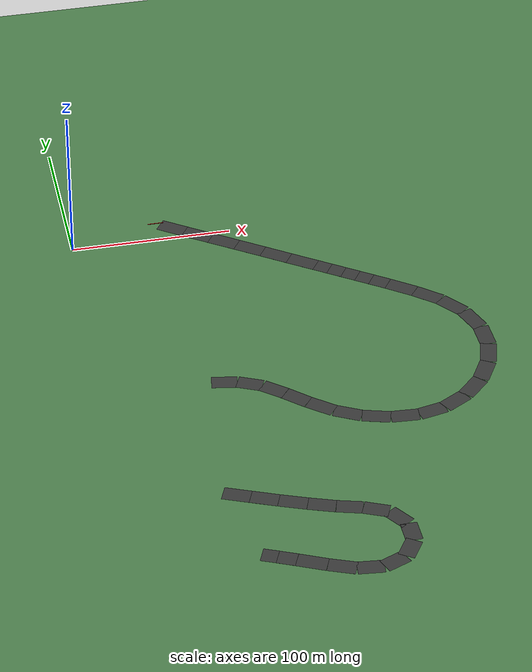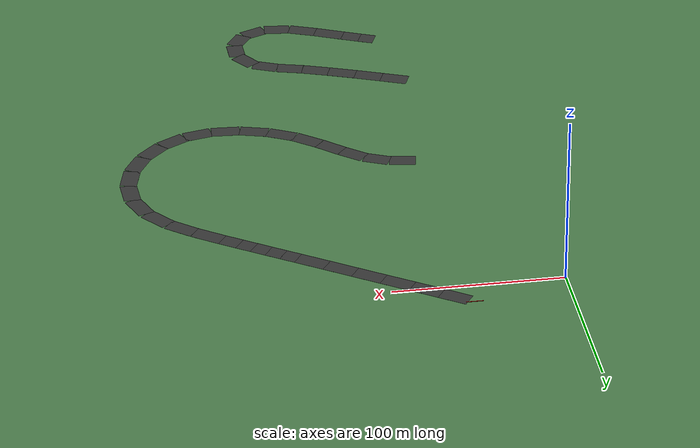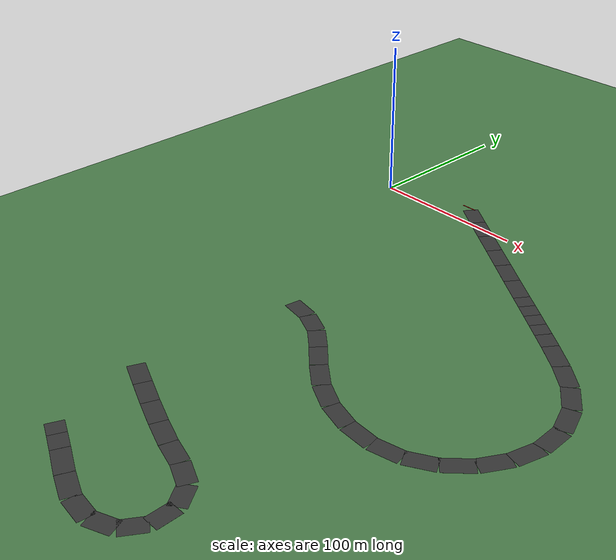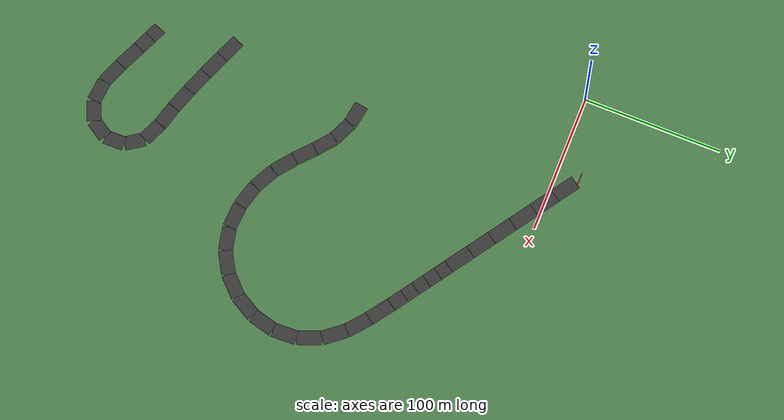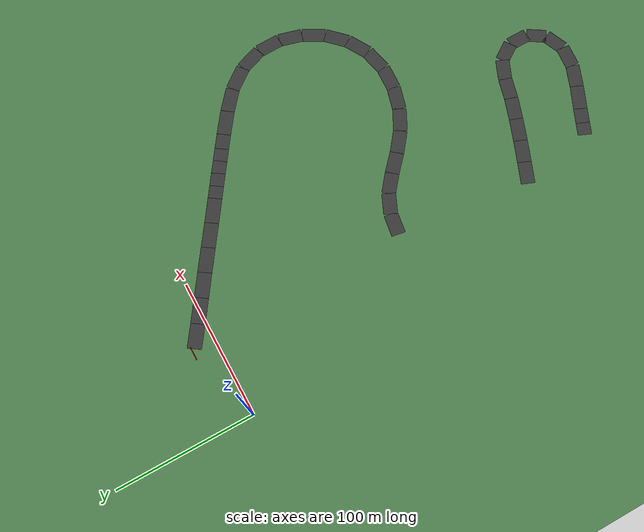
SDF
<sdf version="1.6">
 <world name="new_silesia_ring">
  <model name="ground_plane">
   <static>true</static>
   <link name="link">
    <collision name="collision">
     <geometry><plane><normal>0 0 1</normal><size>500 500</size></plane></geometry>
     <surface><friction><ode><mu>1</mu><mu2>1</mu2></ode></friction></surface>
    </collision>
    <visual name="visual">
     <geometry><plane><normal>0 0 1</normal><size>500 500</size></plane></geometry>
     <material>
      <ambient>0.3 0.5 0.3 1</ambient>
      <diffuse>0.3 0.5 0.3 1</diffuse>
      <specular>0.1 0.1 0.1 1</specular>
     </material>
    </visual>
   </link>
  </model>
  <model name="road_segment_86">
   <static>true</static>
   <pose>65.25505 9.93185 0.003 0 0 2.5406223590411257</pose>
   <link name="link">
    <visual name="visual">
     <geometry><box><size>17.24117116961606 10.0 0.006</size></box></geometry>
     <material><ambient>0.22 0.22 0.22 1</ambient><diffuse>0.22 0.22 0.22 1</diffuse></material>
    </visual>
    <collision name="collision">
     <geometry><box><size>17.24117116961606 10.0 0.006</size></box></geometry>
     <surface><friction><ode><mu>0.9</mu><mu2>0.9</mu2></ode></friction></surface>
    </collision>
   </link>
  </model>
  <model name="road_segment_85">
   <static>true</static>
   <pose>79.81675 0.0052000000000003155 0.003 0 0 2.545780368420958</pose>
   <link name="link">
    <visual name="visual">
     <geometry><box><size>18.005590492122156 10.0 0.006</size></box></geometry>
     <material><ambient>0.22 0.22 0.22 1</ambient><diffuse>0.22 0.22 0.22 1</diffuse></material>
    </visual>
    <collision name="collision">
     <geometry><box><size>18.005590492122156 10.0 0.006</size></box></geometry>
     <surface><friction><ode><mu>0.9</mu><mu2>0.9</mu2></ode></friction></surface>
    </collision>
   </link>
  </model>
  <model name="road_segment_84">
   <static>true</static>
   <pose>94.6917 -10.0511 0.003 0 0 2.548462827201153</pose>
   <link name="link">
    <visual name="visual">
     <geometry><box><size>17.905070161269965 10.0 0.006</size></box></geometry>
     <material><ambient>0.22 0.22 0.22 1</ambient><diffuse>0.22 0.22 0.22 1</diffuse></material>
    </visual>
    <collision name="collision">
     <geometry><box><size>17.905070161269965 10.0 0.006</size></box></geometry>
     <surface><friction><ode><mu>0.9</mu><mu2>0.9</mu2></ode></friction></surface>
    </collision>
   </link>
  </model>
  <model name="road_segment_83">
   <static>true</static>
   <pose>109.4822 -20.0638 0.003 0 0 2.544511419701974</pose>
   <link name="link">
    <visual name="visual">
     <geometry><box><size>17.81687249435209 10.0 0.006</size></box></geometry>
     <material><ambient>0.22 0.22 0.22 1</ambient><diffuse>0.22 0.22 0.22 1</diffuse></material>
    </visual>
    <collision name="collision">
     <geometry><box><size>17.81687249435209 10.0 0.006</size></box></geometry>
     <surface><friction><ode><mu>0.9</mu><mu2>0.9</mu2></ode></friction></surface>
    </collision>
   </link>
  </model>
  <model name="road_segment_82">
   <static>true</static>
   <pose>124.2111 -30.109299999999998 0.003 0 0 2.5415536403649046</pose>
   <link name="link">
    <visual name="visual">
     <geometry><box><size>17.84000682174758 10.0 0.006</size></box></geometry>
     <material><ambient>0.22 0.22 0.22 1</ambient><diffuse>0.22 0.22 0.22 1</diffuse></material>
    </visual>
    <collision name="collision">
     <geometry><box><size>17.84000682174758 10.0 0.006</size></box></geometry>
     <surface><friction><ode><mu>0.9</mu><mu2>0.9</mu2></ode></friction></surface>
    </collision>
   </link>
  </model>
  <model name="road_segment_81">
   <static>true</static>
   <pose>139.06725 -40.221450000000004 0.003 0 0 2.5463261810863087</pose>
   <link name="link">
    <visual name="visual">
     <geometry><box><size>18.102314159797356 10.0 0.006</size></box></geometry>
     <material><ambient>0.22 0.22 0.22 1</ambient><diffuse>0.22 0.22 0.22 1</diffuse></material>
    </visual>
    <collision name="collision">
     <geometry><box><size>18.102314159797356 10.0 0.006</size></box></geometry>
     <surface><friction><ode><mu>0.9</mu><mu2>0.9</mu2></ode></friction></surface>
    </collision>
   </link>
  </model>
  <model name="road_segment_80">
   <static>true</static>
   <pose>150.39355 -47.8811 0.003 0 0 2.5482314529362844</pose>
   <link name="link">
    <visual name="visual">
     <geometry><box><size>9.244017343666128 10.0 0.006</size></box></geometry>
     <material><ambient>0.22 0.22 0.22 1</ambient><diffuse>0.22 0.22 0.22 1</diffuse></material>
    </visual>
    <collision name="collision">
     <geometry><box><size>9.244017343666128 10.0 0.006</size></box></geometry>
     <surface><friction><ode><mu>0.9</mu><mu2>0.9</mu2></ode></friction></surface>
    </collision>
   </link>
  </model>
  <model name="road_segment_79">
   <static>true</static>
   <pose>158.10115000000002 -53.10145 0.003 0 0 2.5443263710449813</pose>
   <link name="link">
    <visual name="visual">
     <geometry><box><size>9.374197634997879 10.0 0.006</size></box></geometry>
     <material><ambient>0.22 0.22 0.22 1</ambient><diffuse>0.22 0.22 0.22 1</diffuse></material>
    </visual>
    <collision name="collision">
     <geometry><box><size>9.374197634997879 10.0 0.006</size></box></geometry>
     <surface><friction><ode><mu>0.9</mu><mu2>0.9</mu2></ode></friction></surface>
    </collision>
   </link>
  </model>
  <model name="road_segment_78">
   <static>true</static>
   <pose>165.84685000000002 -58.370599999999996 0.003 0 0 2.544139347656392</pose>
   <link name="link">
    <visual name="visual">
     <geometry><box><size>9.361843673657457 10.0 0.006</size></box></geometry>
     <material><ambient>0.22 0.22 0.22 1</ambient><diffuse>0.22 0.22 0.22 1</diffuse></material>
    </visual>
    <collision name="collision">
     <geometry><box><size>9.361843673657457 10.0 0.006</size></box></geometry>
     <surface><friction><ode><mu>0.9</mu><mu2>0.9</mu2></ode></friction></surface>
    </collision>
   </link>
  </model>
  <model name="road_segment_77">
   <static>true</static>
   <pose>173.5611 -63.619749999999996 0.003 0 0 2.54407916739214</pose>
   <link name="link">
    <visual name="visual">
     <geometry><box><size>9.29969204705188 10.0 0.006</size></box></geometry>
     <material><ambient>0.22 0.22 0.22 1</ambient><diffuse>0.22 0.22 0.22 1</diffuse></material>
    </visual>
    <collision name="collision">
     <geometry><box><size>9.29969204705188 10.0 0.006</size></box></geometry>
     <surface><friction><ode><mu>0.9</mu><mu2>0.9</mu2></ode></friction></surface>
    </collision>
   </link>
  </model>
  <model name="road_segment_76">
   <static>true</static>
   <pose>181.96335 -69.35405 0.003 0 0 2.5415896317029696</pose>
   <link name="link">
    <visual name="visual">
     <geometry><box><size>11.045347712951358 10.0 0.006</size></box></geometry>
     <material><ambient>0.22 0.22 0.22 1</ambient><diffuse>0.22 0.22 0.22 1</diffuse></material>
    </visual>
    <collision name="collision">
     <geometry><box><size>11.045347712951358 10.0 0.006</size></box></geometry>
     <surface><friction><ode><mu>0.9</mu><mu2>0.9</mu2></ode></friction></surface>
    </collision>
   </link>
  </model>
  <model name="road_segment_75">
   <static>true</static>
   <pose>193.8594 -77.71334999999999 0.003 0 0 2.521386353988409</pose>
   <link name="link">
    <visual name="visual">
     <geometry><box><size>18.03483306299229 10.0 0.006</size></box></geometry>
     <material><ambient>0.22 0.22 0.22 1</ambient><diffuse>0.22 0.22 0.22 1</diffuse></material>
    </visual>
    <collision name="collision">
     <geometry><box><size>18.03483306299229 10.0 0.006</size></box></geometry>
     <surface><friction><ode><mu>0.9</mu><mu2>0.9</mu2></ode></friction></surface>
    </collision>
   </link>
  </model>
  <model name="road_segment_74">
   <static>true</static>
   <pose>208.0374 -88.5904 0.003 0 0 2.452393142345007</pose>
   <link name="link">
    <visual name="visual">
     <geometry><box><size>17.725825589799765 10.0 0.006</size></box></geometry>
     <material><ambient>0.22 0.22 0.22 1</ambient><diffuse>0.22 0.22 0.22 1</diffuse></material>
    </visual>
    <collision name="collision">
     <geometry><box><size>17.725825589799765 10.0 0.006</size></box></geometry>
     <surface><friction><ode><mu>0.9</mu><mu2>0.9</mu2></ode></friction></surface>
    </collision>
   </link>
  </model>
  <model name="road_segment_73">
   <static>true</static>
   <pose>220.43695 -101.2225 0.003 0 0 2.242282197342023</pose>
   <link name="link">
    <visual name="visual">
     <geometry><box><size>17.872057766524822 10.0 0.006</size></box></geometry>
     <material><ambient>0.22 0.22 0.22 1</ambient><diffuse>0.22 0.22 0.22 1</diffuse></material>
    </visual>
    <collision name="collision">
     <geometry><box><size>17.872057766524822 10.0 0.006</size></box></geometry>
     <surface><friction><ode><mu>0.9</mu><mu2>0.9</mu2></ode></friction></surface>
    </collision>
   </link>
  </model>
  <model name="road_segment_72">
   <static>true</static>
   <pose>229.17225000000002 -116.45945 0.003 0 0 1.9386205083355683</pose>
   <link name="link">
    <visual name="visual">
     <geometry><box><size>17.663368304488248 10.0 0.006</size></box></geometry>
     <material><ambient>0.22 0.22 0.22 1</ambient><diffuse>0.22 0.22 0.22 1</diffuse></material>
    </visual>
    <collision name="collision">
     <geometry><box><size>17.663368304488248 10.0 0.006</size></box></geometry>
     <surface><friction><ode><mu>0.9</mu><mu2>0.9</mu2></ode></friction></surface>
    </collision>
   </link>
  </model>
  <model name="road_segment_71">
   <static>true</static>
   <pose>232.65460000000002 -133.20195 0.003 0 0 1.6068447157344026</pose>
   <link name="link">
    <visual name="visual">
     <geometry><box><size>17.01415363307854 10.0 0.006</size></box></geometry>
     <material><ambient>0.22 0.22 0.22 1</ambient><diffuse>0.22 0.22 0.22 1</diffuse></material>
    </visual>
    <collision name="collision">
     <geometry><box><size>17.01415363307854 10.0 0.006</size></box></geometry>
     <surface><friction><ode><mu>0.9</mu><mu2>0.9</mu2></ode></friction></surface>
    </collision>
   </link>
  </model>
  <model name="road_segment_70">
   <static>true</static>
   <pose>230.82344999999998 -149.92765 0.003 0 0 1.3164885190512143</pose>
   <link name="link">
    <visual name="visual">
     <geometry><box><size>16.994895502473693 10.0 0.006</size></box></geometry>
     <material><ambient>0.22 0.22 0.22 1</ambient><diffuse>0.22 0.22 0.22 1</diffuse></material>
    </visual>
    <collision name="collision">
     <geometry><box><size>16.994895502473693 10.0 0.006</size></box></geometry>
     <surface><friction><ode><mu>0.9</mu><mu2>0.9</mu2></ode></friction></surface>
    </collision>
   </link>
  </model>
  <model name="road_segment_69">
   <static>true</static>
   <pose>224.40564999999998 -165.67610000000002 0.003 0 0 1.0536110842540838</pose>
   <link name="link">
    <visual name="visual">
     <geometry><box><size>17.31287595895032 10.0 0.006</size></box></geometry>
     <material><ambient>0.22 0.22 0.22 1</ambient><diffuse>0.22 0.22 0.22 1</diffuse></material>
    </visual>
    <collision name="collision">
     <geometry><box><size>17.31287595895032 10.0 0.006</size></box></geometry>
     <surface><friction><ode><mu>0.9</mu><mu2>0.9</mu2></ode></friction></surface>
    </collision>
   </link>
  </model>
  <model name="road_segment_68">
   <static>true</static>
   <pose>214.006 -179.29739999999998 0.003 0 0 0.7835482236254302</pose>
   <link name="link">
    <visual name="visual">
     <geometry><box><size>17.276910969267604 10.0 0.006</size></box></geometry>
     <material><ambient>0.22 0.22 0.22 1</ambient><diffuse>0.22 0.22 0.22 1</diffuse></material>
    </visual>
    <collision name="collision">
     <geometry><box><size>17.276910969267604 10.0 0.006</size></box></geometry>
     <surface><friction><ode><mu>0.9</mu><mu2>0.9</mu2></ode></friction></surface>
    </collision>
   </link>
  </model>
  <model name="road_segment_67">
   <static>true</static>
   <pose>200.5096 -189.5597 0.003 0 0 0.5140201540005529</pose>
   <link name="link">
    <visual name="visual">
     <geometry><box><size>16.943069654581493 10.0 0.006</size></box></geometry>
     <material><ambient>0.22 0.22 0.22 1</ambient><diffuse>0.22 0.22 0.22 1</diffuse></material>
    </visual>
    <collision name="collision">
     <geometry><box><size>16.943069654581493 10.0 0.006</size></box></geometry>
     <surface><friction><ode><mu>0.9</mu><mu2>0.9</mu2></ode></friction></surface>
    </collision>
   </link>
  </model>
  <model name="road_segment_66">
   <static>true</static>
   <pose>184.8348 -195.5195 0.003 0 0 0.2129772441036507</pose>
   <link name="link">
    <visual name="visual">
     <geometry><box><size>16.97963889486464 10.0 0.006</size></box></geometry>
     <material><ambient>0.22 0.22 0.22 1</ambient><diffuse>0.22 0.22 0.22 1</diffuse></material>
    </visual>
    <collision name="collision">
     <geometry><box><size>16.97963889486464 10.0 0.006</size></box></geometry>
     <surface><friction><ode><mu>0.9</mu><mu2>0.9</mu2></ode></friction></surface>
    </collision>
   </link>
  </model>
  <model name="road_segment_65">
   <static>true</static>
   <pose>167.97084999999998 -196.82344999999998 0.003 0 0 -0.0572049556850326</pose>
   <link name="link">
    <visual name="visual">
     <geometry><box><size>17.159969546010274 10.0 0.006</size></box></geometry>
     <material><ambient>0.22 0.22 0.22 1</ambient><diffuse>0.22 0.22 0.22 1</diffuse></material>
    </visual>
    <collision name="collision">
     <geometry><box><size>17.159969546010274 10.0 0.006</size></box></geometry>
     <surface><friction><ode><mu>0.9</mu><mu2>0.9</mu2></ode></friction></surface>
    </collision>
   </link>
  </model>
  <model name="road_segment_64">
   <static>true</static>
   <pose>151.19975 -194.04125 0.003 0 0 -0.2723540040637797</pose>
   <link name="link">
    <visual name="visual">
     <geometry><box><size>17.038326941927142 10.0 0.006</size></box></geometry>
     <material><ambient>0.22 0.22 0.22 1</ambient><diffuse>0.22 0.22 0.22 1</diffuse></material>
    </visual>
    <collision name="collision">
     <geometry><box><size>17.038326941927142 10.0 0.006</size></box></geometry>
     <surface><friction><ode><mu>0.9</mu><mu2>0.9</mu2></ode></friction></surface>
    </collision>
   </link>
  </model>
  <model name="road_segment_63">
   <static>true</static>
   <pose>135.43585 -187.87619999999998 0.003 0 0 -0.47354939639096283</pose>
   <link name="link">
    <visual name="visual">
     <geometry><box><size>16.98681007399563 10.0 0.006</size></box></geometry>
     <material><ambient>0.22 0.22 0.22 1</ambient><diffuse>0.22 0.22 0.22 1</diffuse></material>
    </visual>
    <collision name="collision">
     <geometry><box><size>16.98681007399563 10.0 0.006</size></box></geometry>
     <surface><friction><ode><mu>0.9</mu><mu2>0.9</mu2></ode></friction></surface>
    </collision>
   </link>
  </model>
  <model name="road_segment_62">
   <static>true</static>
   <pose>121.18545 -178.78055 0.003 0 0 -0.6626829588267418</pose>
   <link name="link">
    <visual name="visual">
     <geometry><box><size>16.97646309276465 10.0 0.006</size></box></geometry>
     <material><ambient>0.22 0.22 0.22 1</ambient><diffuse>0.22 0.22 0.22 1</diffuse></material>
    </visual>
    <collision name="collision">
     <geometry><box><size>16.97646309276465 10.0 0.006</size></box></geometry>
     <surface><friction><ode><mu>0.9</mu><mu2>0.9</mu2></ode></friction></surface>
    </collision>
   </link>
  </model>
  <model name="road_segment_61">
   <static>true</static>
   <pose>108.59785 -168.23165 0.003 0 0 -0.7347136143234462</pose>
   <link name="link">
    <visual name="visual">
     <geometry><box><size>15.89156085788932 10.0 0.006</size></box></geometry>
     <material><ambient>0.22 0.22 0.22 1</ambient><diffuse>0.22 0.22 0.22 1</diffuse></material>
    </visual>
    <collision name="collision">
     <geometry><box><size>15.89156085788932 10.0 0.006</size></box></geometry>
     <surface><friction><ode><mu>0.9</mu><mu2>0.9</mu2></ode></friction></surface>
    </collision>
   </link>
  </model>
  <model name="road_segment_60">
   <static>true</static>
   <pose>96.74805 -158.09705 0.003 0 0 -0.6793193835504278</pose>
   <link name="link">
    <visual name="visual">
     <geometry><box><size>15.305517047783782 10.0 0.006</size></box></geometry>
     <material><ambient>0.22 0.22 0.22 1</ambient><diffuse>0.22 0.22 0.22 1</diffuse></material>
    </visual>
    <collision name="collision">
     <geometry><box><size>15.305517047783782 10.0 0.006</size></box></geometry>
     <surface><friction><ode><mu>0.9</mu><mu2>0.9</mu2></ode></friction></surface>
    </collision>
   </link>
  </model>
  <model name="road_segment_59">
   <static>true</static>
   <pose>83.7916 -150.1632 0.003 0 0 -0.41984891273563446</pose>
   <link name="link">
    <visual name="visual">
     <geometry><box><size>15.33723020235401 10.0 0.006</size></box></geometry>
     <material><ambient>0.22 0.22 0.22 1</ambient><diffuse>0.22 0.22 0.22 1</diffuse></material>
    </visual>
    <collision name="collision">
     <geometry><box><size>15.33723020235401 10.0 0.006</size></box></geometry>
     <surface><friction><ode><mu>0.9</mu><mu2>0.9</mu2></ode></friction></surface>
    </collision>
   </link>
  </model>
  <model name="road_segment_58">
   <static>true</static>
   <pose>69.09175 -145.79365 0.003 0 0 -0.16018637063031094</pose>
   <link name="link">
    <visual name="visual">
     <geometry><box><size>15.59414286006127 10.0 0.006</size></box></geometry>
     <material><ambient>0.22 0.22 0.22 1</ambient><diffuse>0.22 0.22 0.22 1</diffuse></material>
    </visual>
    <collision name="collision">
     <geometry><box><size>15.59414286006127 10.0 0.006</size></box></geometry>
     <surface><friction><ode><mu>0.9</mu><mu2>0.9</mu2></ode></friction></surface>
    </collision>
   </link>
  </model>
  <model name="road_segment_45">
   <static>true</static>
   <pose>57.14425 -245.72915 0.003 0 0 2.751585008144954</pose>
   <link name="link">
    <visual name="visual">
     <geometry><box><size>16.24348583832916 10.0 0.006</size></box></geometry>
     <material><ambient>0.22 0.22 0.22 1</ambient><diffuse>0.22 0.22 0.22 1</diffuse></material>
    </visual>
    <collision name="collision">
     <geometry><box><size>16.24348583832916 10.0 0.006</size></box></geometry>
     <surface><friction><ode><mu>0.9</mu><mu2>0.9</mu2></ode></friction></surface>
    </collision>
   </link>
  </model>
  <model name="road_segment_44">
   <static>true</static>
   <pose>72.2807 -251.89265 0.003 0 0 2.7581715012120074</pose>
   <link name="link">
    <visual name="visual">
     <geometry><box><size>16.44313207178 10.0 0.006</size></box></geometry>
     <material><ambient>0.22 0.22 0.22 1</ambient><diffuse>0.22 0.22 0.22 1</diffuse></material>
    </visual>
    <collision name="collision">
     <geometry><box><size>16.44313207178 10.0 0.006</size></box></geometry>
     <surface><friction><ode><mu>0.9</mu><mu2>0.9</mu2></ode></friction></surface>
    </collision>
   </link>
  </model>
  <model name="road_segment_43">
   <static>true</static>
   <pose>87.7456 -257.94815 0.003 0 0 2.77838590650715</pose>
   <link name="link">
    <visual name="visual">
     <geometry><box><size>16.7749587316929 10.0 0.006</size></box></geometry>
     <material><ambient>0.22 0.22 0.22 1</ambient><diffuse>0.22 0.22 0.22 1</diffuse></material>
    </visual>
    <collision name="collision">
     <geometry><box><size>16.7749587316929 10.0 0.006</size></box></geometry>
     <surface><friction><ode><mu>0.9</mu><mu2>0.9</mu2></ode></friction></surface>
    </collision>
   </link>
  </model>
  <model name="road_segment_42">
   <static>true</static>
   <pose>103.31215 -263.6225 0.003 0 0 2.8060352794445107</pose>
   <link name="link">
    <visual name="visual">
     <geometry><box><size>16.36523990811012 10.0 0.006</size></box></geometry>
     <material><ambient>0.22 0.22 0.22 1</ambient><diffuse>0.22 0.22 0.22 1</diffuse></material>
    </visual>
    <collision name="collision">
     <geometry><box><size>16.36523990811012 10.0 0.006</size></box></geometry>
     <surface><friction><ode><mu>0.9</mu><mu2>0.9</mu2></ode></friction></surface>
    </collision>
   </link>
  </model>
  <model name="road_segment_41">
   <static>true</static>
   <pose>118.51925 -268.36170000000004 0.003 0 0 2.874784756471636</pose>
   <link name="link">
    <visual name="visual">
     <geometry><box><size>15.510501579575056 10.0 0.006</size></box></geometry>
     <material><ambient>0.22 0.22 0.22 1</ambient><diffuse>0.22 0.22 0.22 1</diffuse></material>
    </visual>
    <collision name="collision">
     <geometry><box><size>15.510501579575056 10.0 0.006</size></box></geometry>
     <surface><friction><ode><mu>0.9</mu><mu2>0.9</mu2></ode></friction></surface>
    </collision>
   </link>
  </model>
  <model name="road_segment_40">
   <static>true</static>
   <pose>132.9527 -273.44445 0.003 0 0 2.729630486952672</pose>
   <link name="link">
    <visual name="visual">
     <geometry><box><size>15.174767815357182 10.0 0.006</size></box></geometry>
     <material><ambient>0.22 0.22 0.22 1</ambient><diffuse>0.22 0.22 0.22 1</diffuse></material>
    </visual>
    <collision name="collision">
     <geometry><box><size>15.174767815357182 10.0 0.006</size></box></geometry>
     <surface><friction><ode><mu>0.9</mu><mu2>0.9</mu2></ode></friction></surface>
    </collision>
   </link>
  </model>
  <model name="road_segment_39">
   <static>true</static>
   <pose>144.0446 -282.47405000000003 0.003 0 0 2.1753591753600294</pose>
   <link name="link">
    <visual name="visual">
     <geometry><box><size>14.564680002320655 10.0 0.006</size></box></geometry>
     <material><ambient>0.22 0.22 0.22 1</ambient><diffuse>0.22 0.22 0.22 1</diffuse></material>
    </visual>
    <collision name="collision">
     <geometry><box><size>14.564680002320655 10.0 0.006</size></box></geometry>
     <surface><friction><ode><mu>0.9</mu><mu2>0.9</mu2></ode></friction></surface>
    </collision>
   </link>
  </model>
  <model name="road_segment_38">
   <static>true</static>
   <pose>148.2841 -295.60895 0.003 0 0 1.5848224390630694</pose>
   <link name="link">
    <visual name="visual">
     <geometry><box><size>14.288105439490566 10.0 0.006</size></box></geometry>
     <material><ambient>0.22 0.22 0.22 1</ambient><diffuse>0.22 0.22 0.22 1</diffuse></material>
    </visual>
    <collision name="collision">
     <geometry><box><size>14.288105439490566 10.0 0.006</size></box></geometry>
     <surface><friction><ode><mu>0.9</mu><mu2>0.9</mu2></ode></friction></surface>
    </collision>
   </link>
  </model>
  <model name="road_segment_37">
   <static>true</static>
   <pose>144.56885 -308.68359999999996 0.003 0 0 0.9991640709378251</pose>
   <link name="link">
    <visual name="visual">
     <geometry><box><size>14.10503149836964 10.0 0.006</size></box></geometry>
     <material><ambient>0.22 0.22 0.22 1</ambient><diffuse>0.22 0.22 0.22 1</diffuse></material>
    </visual>
    <collision name="collision">
     <geometry><box><size>14.10503149836964 10.0 0.006</size></box></geometry>
     <surface><friction><ode><mu>0.9</mu><mu2>0.9</mu2></ode></friction></surface>
    </collision>
   </link>
  </model>
  <model name="road_segment_36">
   <static>true</static>
   <pose>133.9066 -317.4448 0.003 0 0 0.3919337205939303</pose>
   <link name="link">
    <visual name="visual">
     <geometry><box><size>14.817152796674545 10.0 0.006</size></box></geometry>
     <material><ambient>0.22 0.22 0.22 1</ambient><diffuse>0.22 0.22 0.22 1</diffuse></material>
    </visual>
    <collision name="collision">
     <geometry><box><size>14.817152796674545 10.0 0.006</size></box></geometry>
     <surface><friction><ode><mu>0.9</mu><mu2>0.9</mu2></ode></friction></surface>
    </collision>
   </link>
  </model>
  <model name="road_segment_35">
   <static>true</static>
   <pose>119.26384999999999 -319.5174 0.003 0 0 -0.09683635488965607</pose>
   <link name="link">
    <visual name="visual">
     <geometry><box><size>15.665291531599397 10.0 0.006</size></box></geometry>
     <material><ambient>0.22 0.22 0.22 1</ambient><diffuse>0.22 0.22 0.22 1</diffuse></material>
    </visual>
    <collision name="collision">
     <geometry><box><size>15.665291531599397 10.0 0.006</size></box></geometry>
     <surface><friction><ode><mu>0.9</mu><mu2>0.9</mu2></ode></friction></surface>
    </collision>
   </link>
  </model>
  <model name="road_segment_34">
   <static>true</static>
   <pose>103.78059999999999 -315.76505 0.003 0 0 -0.37151763513232516</pose>
   <link name="link">
    <visual name="visual">
     <geometry><box><size>16.5002916086353 10.0 0.006</size></box></geometry>
     <material><ambient>0.22 0.22 0.22 1</ambient><diffuse>0.22 0.22 0.22 1</diffuse></material>
    </visual>
    <collision name="collision">
     <geometry><box><size>16.5002916086353 10.0 0.006</size></box></geometry>
     <surface><friction><ode><mu>0.9</mu><mu2>0.9</mu2></ode></friction></surface>
    </collision>
   </link>
  </model>
  <model name="road_segment_33">
   <static>true</static>
   <pose>88.00595 -309.13565 0.003 0 0 -0.42234404258640357</pose>
   <link name="link">
    <visual name="visual">
     <geometry><box><size>17.732876804963134 10.0 0.006</size></box></geometry>
     <material><ambient>0.22 0.22 0.22 1</ambient><diffuse>0.22 0.22 0.22 1</diffuse></material>
    </visual>
    <collision name="collision">
     <geometry><box><size>17.732876804963134 10.0 0.006</size></box></geometry>
     <surface><friction><ode><mu>0.9</mu><mu2>0.9</mu2></ode></friction></surface>
    </collision>
   </link>
  </model>
  <model name="road_segment_32">
   <static>true</static>
   <pose>74.87475 -303.29985 0.003 0 0 -0.41153906032711796</pose>
   <link name="link">
    <visual name="visual">
     <geometry><box><size>11.006689770316953 10.0 0.006</size></box></geometry>
     <material><ambient>0.22 0.22 0.22 1</ambient><diffuse>0.22 0.22 0.22 1</diffuse></material>
    </visual>
    <collision name="collision">
     <geometry><box><size>11.006689770316953 10.0 0.006</size></box></geometry>
     <surface><friction><ode><mu>0.9</mu><mu2>0.9</mu2></ode></friction></surface>
    </collision>
   </link>
  </model>
  <model name="road_segment_31">
   <static>true</static>
   <pose>65.59355 -299.3038 0.003 0 0 -0.4006159119010247</pose>
   <link name="link">
    <visual name="visual">
     <geometry><box><size>9.203417665737007 10.0 0.006</size></box></geometry>
     <material><ambient>0.22 0.22 0.22 1</ambient><diffuse>0.22 0.22 0.22 1</diffuse></material>
    </visual>
    <collision name="collision">
     <geometry><box><size>9.203417665737007 10.0 0.006</size></box></geometry>
     <surface><friction><ode><mu>0.9</mu><mu2>0.9</mu2></ode></friction></surface>
    </collision>
   </link>
  </model>
  <model name="finish_line">
   <static>true</static>
   <pose>55.4845 16.6392 0.05 0 0 0</pose>
   <link name="link">
    <visual name="visual">
     <geometry><box><size>10 0.5 0.1</size></box></geometry>
     <material><ambient>1 0 0 1</ambient><diffuse>1 0 0 1</diffuse></material>
    </visual>
    <collision name="collision"><geometry><box><size>10 0.5 0.1</size></box></geometry></collision>
   </link>
  </model>
 </world>
</sdf>
